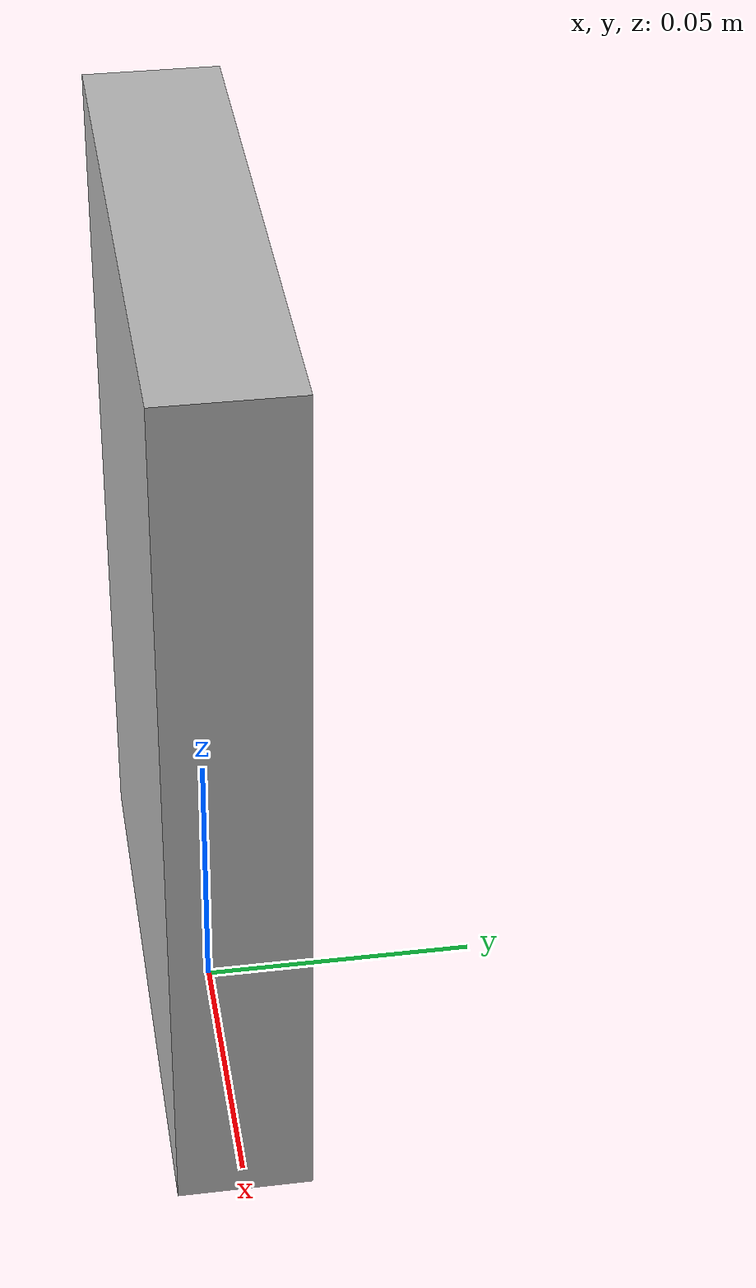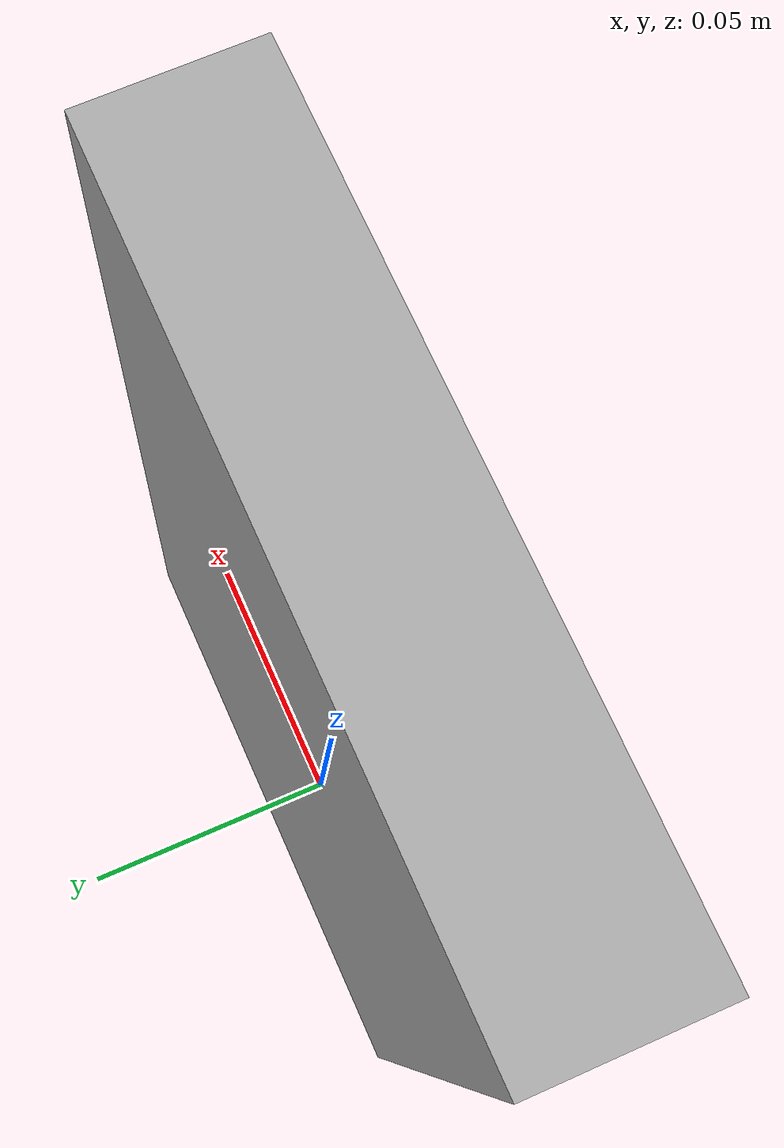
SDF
<?xml version="1.0"?>
<sdf version="1.9">
  <model name="textured_drug_004">
    <static>false</static>
    <self_collide>false</self_collide>
    <link name="body">
      <inertial>
        <pose>0 0 0.080000 0 0 0</pose>
        <mass>0.091413</mass>
        <inertia>
          <ixx>0.00019929</ixx>
          <ixy>0.0</ixy>
          <ixz>0.0</ixz>
          <iyy>0.00028660</iyy>
          <iyz>0.0</iyz>
          <izz>0.00009586</izz>
        </inertia>
      </inertial>
      <collision name="collision">
        <pose>0 0 0.080000 0 0 0</pose>
        <geometry><box><size>0.109648 0.023684 0.160000</size></box></geometry>
        <surface>
          <friction>
            <ode>
              <mu>1.300</mu>
              <mu2>1.300</mu2>
            </ode>
          </friction>
          <contact>
            <ode>
              <kp>120000.0</kp>
              <kd>8.0</kd>
            </ode>
          </contact>
        </surface>
      </collision>
      <visual name="visual">
        <pose>0 0 0.080000 0 0 0</pose>
        <geometry>
          <mesh>
            <uri>meshes/model.obj</uri>
            <scale>1 1.350000 1.000000</scale>
          </mesh>
        </geometry>
      </visual>
    </link>
  </model>
</sdf>
